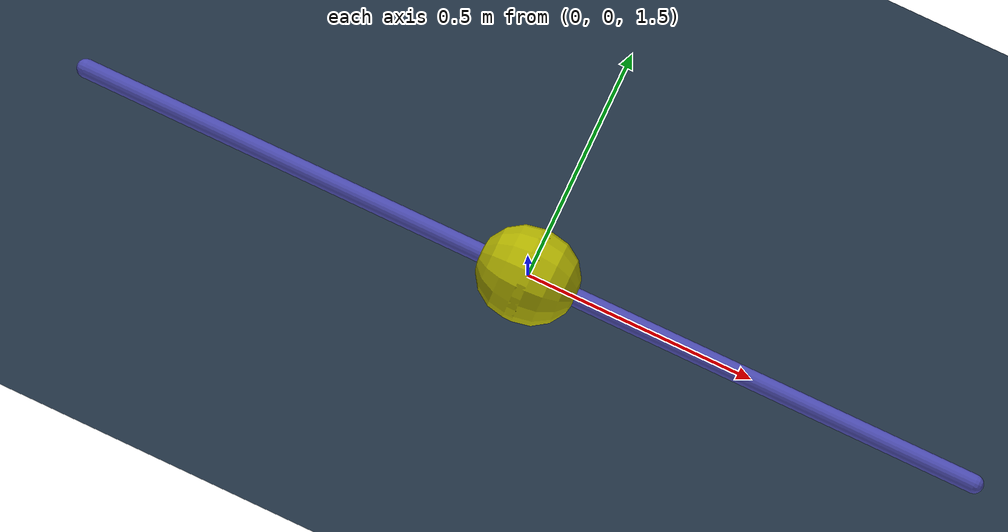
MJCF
<mujoco model="pendulum">
    <include file="../worlds/world.xml"/>
    <compiler coordinate="local" inertiafromgeom="true"/>
    <default>
        <joint damping="0"/>
        <geom contype="0" friction="0 0 0"/>
    </default>
    <option gravity="0 0 -9.81" integrator="RK4"/>
    <size nstack="3000"/>
    <worldbody>
        <geom name="rail" pos="0 0 1.5" quat="0.707 0 0.707 0" rgba="0.3 0.3 0.7 1" size="0.02 1" type="capsule"/>
        <body name="pole0" pos="0 0 1.5">
            <camera name="track_front" mode="fixed" pos="0 4 0" xyaxes="-1 0 0 0 0 1"/>
            <geom name="geom_b0" pos="0 0 0" quat="0.707 0 0.707 0" size="0.1 0.01" type="capsule" rgba="0.7 0.7 0 1"/>
            <site name="pole0_0" pos="0 0 0" size="0.01 0.01"/>
            <site name="pole0_1" pos="0 0 0" size="0.01 0.01"/>

        </body>
    </worldbody>
</mujoco>

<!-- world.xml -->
<mujoco>
    <statistic extent="2" meansize=".05"/>
    <option timestep="0.001" solver="Newton" iterations="50" tolerance="1e-5" jacobian="sparse" cone="pyramidal" gravity='0 0 -9.81'/>

    <visual>
        <rgba haze="0.15 0.25 0.35 1"/>
        <quality shadowsize="2048"/>
        <map stiffness="700" shadowscale="0.5" fogstart="10" fogend="15" zfar="40" haze="0.3"/>
        <headlight ambient=".2 .2 .2" diffuse=".8 .8 .8" specular="0.1 0.1 0.1"/>
    </visual>

    <asset>
        <texture name="skybox" type="skybox" builtin="gradient" rgb1=".1 .1 .30" rgb2="0 0 0" width="800" height="800" mark="random" markrgb="1 1 1"/>
        <texture name="texplane" type="2d" builtin="checker" rgb1=".2 .3 .4" rgb2=".1 0.15 0.2"
            width="512" height="512" mark="cross" markrgb=".8 .8 .8"/>
        <material name="matplane" reflectance="0.0" texture="texplane" texrepeat="1 1" texuniform="true"/>
    </asset>

    <worldbody>
        <geom name="ground" type="plane" size="0 0 1" pos="0 0 0" quat="1 0 0 0" material="matplane" condim="6"/>
        <light mode='trackcom' pos='0 0 5' dir='0 0 -1'/>
        <light directional='true' pos='0 0 3' dir='0 0 -1' diffuse='0.2 0.2 0.2' specular='0 0 0'/>
    </worldbody>
</mujoco>
